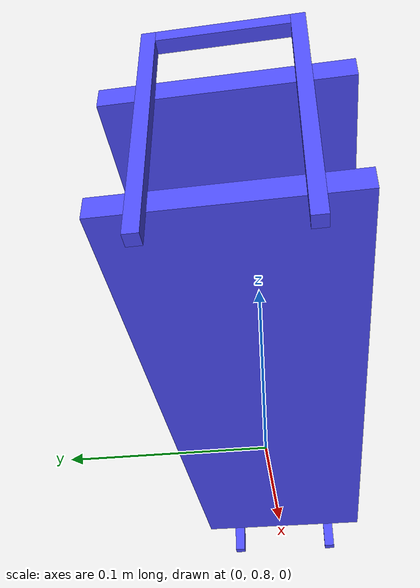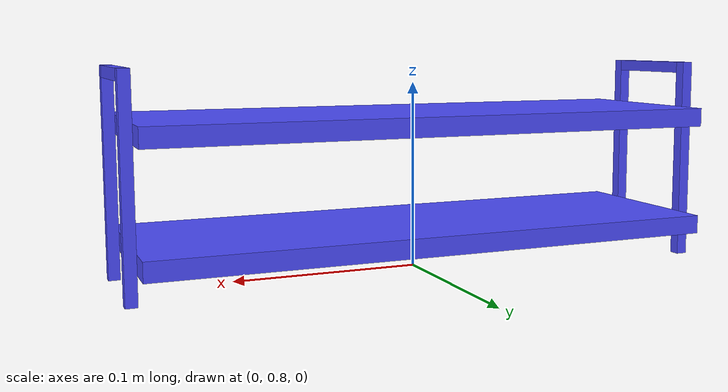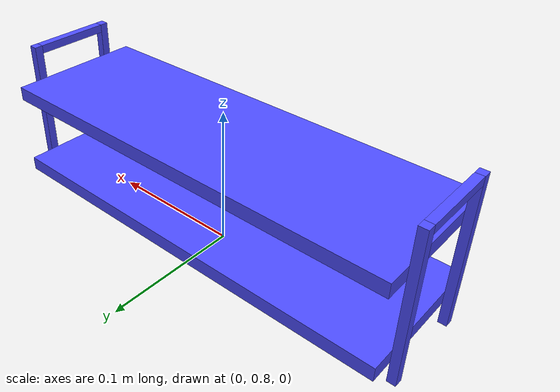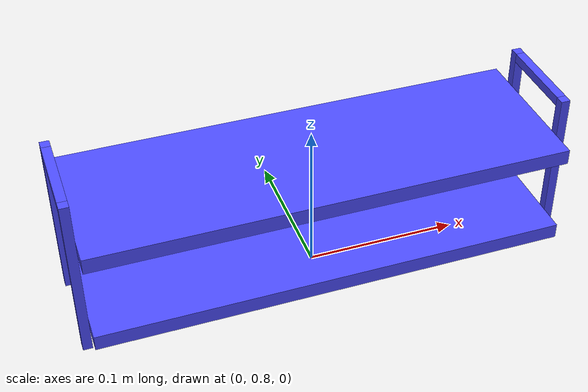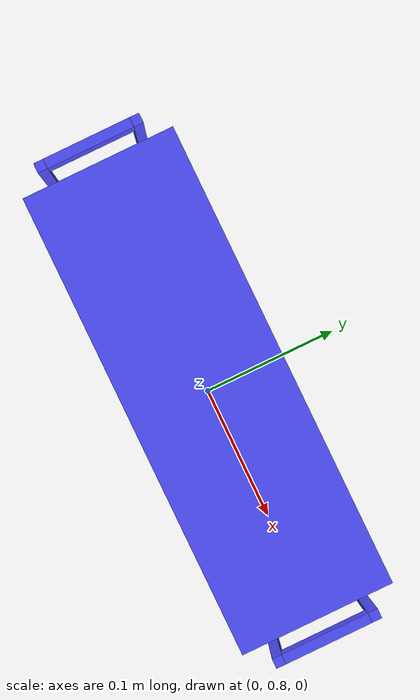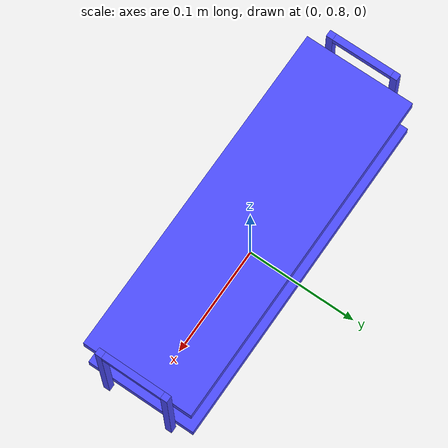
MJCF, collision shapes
<mujoco model="shelfb">
    <compiler angle="radian" inertiafromgeom="auto" inertiagrouprange="4 5"/>
    <asset>
        <texture name="T_shelf_wood" type="cube" file="../textures/wood4.png"/>

      <material name="shelfb_col" rgba="0.3 0.3 1.0 0.5" shininess="0" specular="0"/>
      <material name="shelfb_white" rgba=".85 .85 .85 1" shininess="1" reflectance=".7" specular=".5"/>
      <material name="shelfb_wood" texture="T_shelf_wood" shininess="1" reflectance="1" specular=".5"/>

    </asset>
    <default>

      <default class="shelfb_base">
          <joint armature="0.001" damping="2" limited="true"/>
          <geom conaffinity="0" contype="0" group="1" type="mesh"/>
          <position ctrllimited="true" ctrlrange="0 1.57"/>
          <default class="shelfb_viz">
              <geom condim="4" type="mesh"/>
          </default>
          <default class="shelfb_col">
              <geom conaffinity="1" condim="3" contype="0" group="4" material="shelfb_col" solimp="0.99 0.99 0.01" solref="0.01 1"/>
          </default>
      </default>
    </default>

    <asset>
      <mesh file="../objects/meshes/shelfb/shelf_0.stl" name="shelf_0"/>
      <mesh file="../objects/meshes/shelfb/shelf_1.stl" name="shelf_1"/>
      <mesh file="../objects/meshes/shelfb/shelf_frame.stl" name="shelf_frame"/>
    </asset>
    <worldbody>
        <body pos="0 0.8 0">
            <body childclass="shelfb_base">
      <geom material="shelfb_wood" mesh="shelf_0" pos="0 0 0.02"/>
      <geom material="shelfb_wood" mesh="shelf_1" pos="0 0 0.08"/>
      <geom material="shelfb_white" mesh="shelf_frame"/>
      <geom class="shelfb_col" pos="0 0 0.02" size="0.152 0.05 0.005" type="box"/>
      <geom class="shelfb_col" pos="0 0 0.08" size="0.152 0.05 0.005" type="box"/>
      <geom class="shelfb_col" pos="-0.155 0.03 0.055" size="0.003 0.003 0.055" type="box"/>
      <geom class="shelfb_col" pos="-0.155 -0.03 0.055" size="0.003 0.003 0.055" type="box"/>
      <geom class="shelfb_col" pos="-0.155 0 0.107" size="0.003 0.027 0.003" type="box"/>
      <geom class="shelfb_col" pos="0.155 0 0.107" size="0.003 0.027 0.003" type="box"/>
      <geom class="shelfb_col" pos="0.155 -0.03 0.055" size="0.003 0.003 0.055" type="box"/>
      <geom class="shelfb_col" pos="0.155 0.03 0.055" size="0.003 0.003 0.055" type="box"/>
    </body>
        </body>
    </worldbody>
</mujoco>
